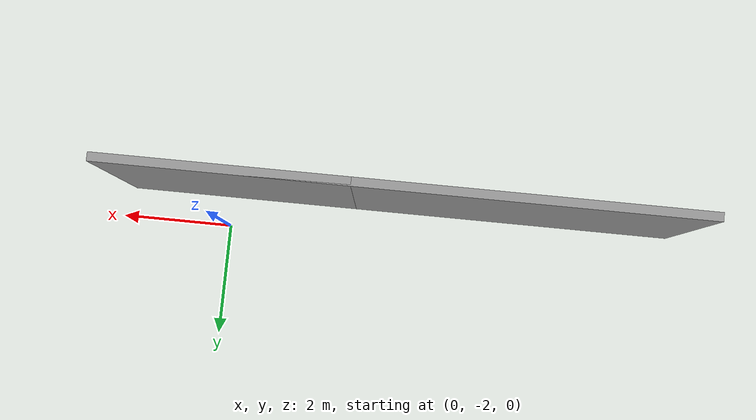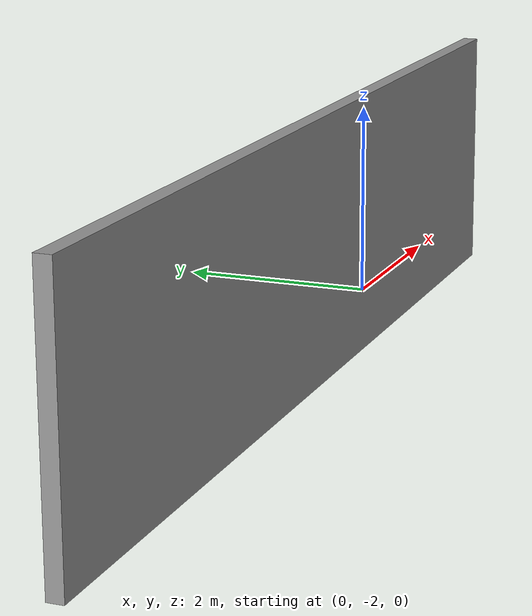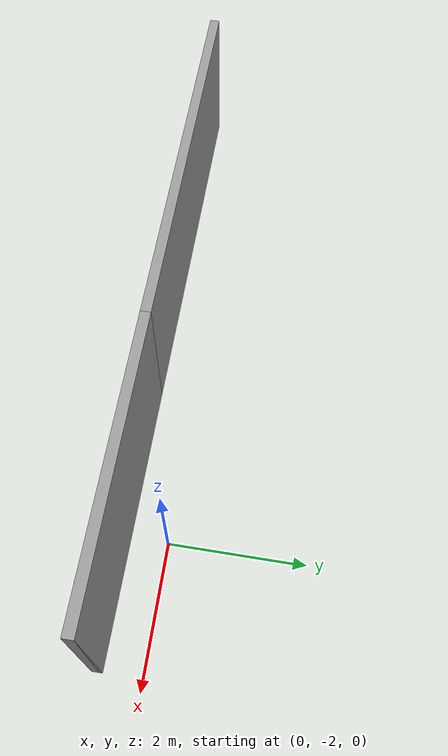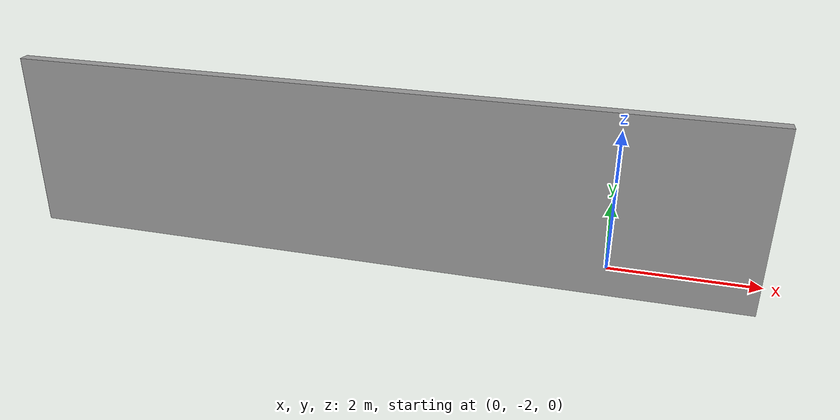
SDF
<?xml version='1.0'?>
<sdf version='1.6'>
  <model name='wall_10m'>
    <pose frame=''>-3.165 -2.62 0 0 -0 0</pose>
    <link name='Wall_0'>
      <collision name='Wall_0_Collision'>
        <geometry>
          <box>
            <size>4.16 0.15 2.5</size>
          </box>
        </geometry>
        <pose frame=''>0 0 1.25 0 -0 0</pose>
      </collision>
      <visual name='Wall_0_Visual'>
        <pose frame=''>0 0 1.25 0 -0 0</pose>
        <geometry>
          <box>
            <size>4.16 0.15 2.5</size>
          </box>
        </geometry>
        <material>
          <script>
            <uri>file://media/materials/scripts/gazebo.material</uri>
            <name>Gazebo/Grey</name>
          </script>
          <ambient>1 1 1 1</ambient>
        </material>
        <meta>
          <layer>0</layer>
        </meta>
      </visual>
      <pose frame=''>2.92 0 0 0 -0 0</pose>
    </link>
    <link name='Wall_1'>
      <collision name='Wall_1_Collision'>
        <geometry>
          <box>
            <size>10 0.15 2.5</size>
          </box>
        </geometry>
        <pose frame=''>0 0 1.25 0 -0 0</pose>
      </collision>
      <visual name='Wall_1_Visual'>
        <pose frame=''>0 0 1.25 0 -0 0</pose>
        <geometry>
          <box>
            <size>10 0.15 2.5</size>
          </box>
        </geometry>
        <material>
          <script>
            <uri>file://media/materials/scripts/gazebo.material</uri>
            <name>Gazebo/Grey</name>
          </script>
          <ambient>1 1 1 1</ambient>
        </material>
        <meta>
          <layer>0</layer>
        </meta>
      </visual>
      <pose frame=''>0 0 0 0 -0 3.14159</pose>
    </link>
    <static>1</static>
  </model>
</sdf>
